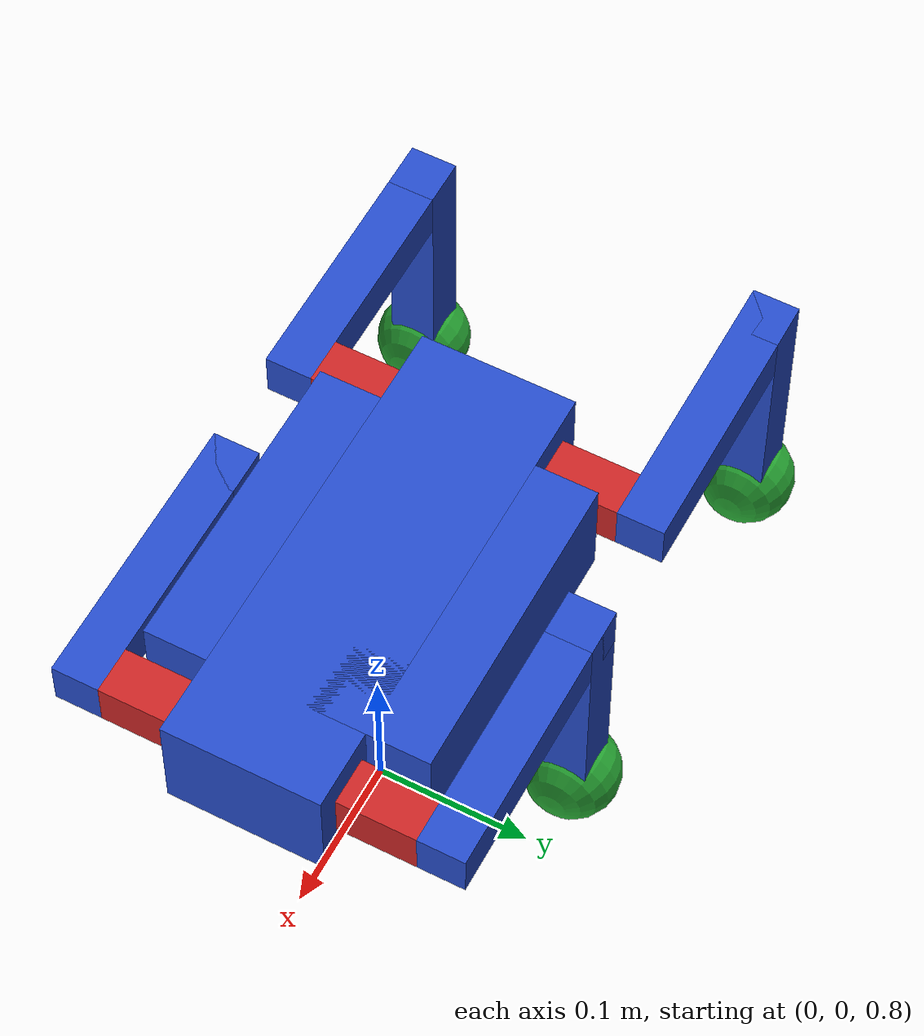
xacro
<?xml version='1.0'?>
<robot name="quadrus" xmlns:xacro="http://www.ros.org/wiki/xacro">

	<!-- Constants for robot dimensions, mass and inertia-->
	<xacro:property name="PI" value="3.1415926535897931"/>

	<xacro:property name="hip_offset" value="0.04" />
	<xacro:property name="upperleg_length" value="0.150" />
	<xacro:property name="lowerleg_length" value="0.150" />

	<xacro:property name="rear_hip_long_offset" value="-0.12" />
	<xacro:property name="hip_long_center_dist" value="0.24" />
	<xacro:property name="hip_lat_center_dist" value="0.15" />

	<!-- Import Rviz colors -->
	<xacro:include filename="$(find qd_simulation)/robot_description/materials.xacro" />
	<!-- Import all Gazebo-customization elements, including Gazebo colors -->
	<xacro:include filename="$(find qd_simulation)/robot_description/quadrus.gazebo" />

	<!-- Used for fixing robot to Gazebo 'base_link' -->
	<link name="world"/>

	<joint name="fixed" type="fixed">
		<parent link="world"/>
		<child link="base_link"/>
		<origin xyz="0 0 1"/>
	</joint>

	<link name="base_link">
		<visual>
			<origin xyz="0 0 0" rpy="0 0 0" />
			<geometry>
				<box size="0.30 0.10 0.07"/>
			</geometry>
			<material name="blue" />
		</visual>

		<visual>
			<origin xyz="0 0 0" rpy="0 0 0" />
			<geometry>
				<box size="0.2 0.18 0.07"/>
			</geometry>
			<material name="blue"/>
		</visual>

		<collision>
			<origin xyz="0 0 0" rpy="0 0 0" />
			<geometry>
				<box size="0.30 0.10 0.07"/>
			</geometry>
		</collision>

		<inertial>
			<mass value="2"/>
			<inertia ixx="0.13" ixy="0.0" ixz="0.0" iyy="0.21" iyz="0.0" izz="0.13"/>
		</inertial>

	</link>

	<xacro:macro name="quadrus_leg" params="long lat id">
		<!-- Hip -->
			<xacro:property name="hip_joint_id" value="J${(id-1)*3+1}"/>

			<link name="link_${long}_${lat}_hip">
				<visual>
					<origin xyz="0 0 0" rpy="0 0 0" />
					<geometry>
						<box size="0.03 0.05 0.03"/>
					</geometry>
					<material name="red"/>
				</visual>

				<collision>
					<origin xyz="0 0 0" rpy="0 0 0" />
					<geometry>
						<box size="0.03 0.05 0.03"/>
					</geometry>
				</collision>

				<inertial>
					<mass value="0.1"/>
					<inertia ixx="0.01" ixy="0.0" ixz="0.0" iyy="0.01" iyz="0.0" izz="0.01"/>
				</inertial>

			</link>

			<joint name="${hip_joint_id}" type="continuous">
				<parent link="base_link"/>
				<child link="link_${long}_${lat}_hip"/>

				<xacro:if value="${long == 'front' and lat == 'left'}">
					<origin xyz="${rear_hip_long_offset+hip_long_center_dist} ${hip_lat_center_dist/2.0} 0" rpy="0 0 0" />
				</xacro:if>

				<xacro:if value="${long == 'front' and lat == 'right'}">
					<origin xyz="${rear_hip_long_offset+hip_long_center_dist} ${-hip_lat_center_dist/2.0} 0" rpy="0 0 0" />
				</xacro:if>

				<xacro:if value="${long == 'back' and lat == 'left'}">
					<origin xyz="${rear_hip_long_offset} ${hip_lat_center_dist/2.0} 0" rpy="0 0 0" />
				</xacro:if>

				<xacro:if value="${long == 'back' and lat == 'right'}">
					<origin xyz="${rear_hip_long_offset} ${-hip_lat_center_dist/2.0} 0" rpy="0 0 0" />
				</xacro:if>

				<axis xyz="1 0 0" />
			</joint>

			<transmission name="transmission_${long}_${lat}_hip">
				<type>transmission_interface/SimpleTransmission</type>
				<joint name="${hip_joint_id}">
					<hardwareInterface>hardware_interface/EffortJointInterface</hardwareInterface>
				</joint>
				<actuator name="motor_${long}_${lat}_hip">
					<mechanicalReduction>1</mechanicalReduction>
					<hardwareInterface>hardware_interface/EffortJointInterface</hardwareInterface>
				</actuator>
			</transmission>

			<gazebo reference="link_${long}_${lat}_hip">
				<material>Gazebo/Red</material>
			</gazebo>

		<!-- Upperleg -->
			<xacro:property name="upperleg_joint_id" value="J${(id-1)*3+2}"/>

			<link name="link_${long}_${lat}_upperleg">
				<visual>
					<origin xyz="-0.075 0 0" rpy="0 0 0" />
					<geometry>
						<box size="${upperleg_length+0.03} 0.03 0.03"/>
					</geometry>
					<material name="blue"/>
				</visual>

				<collision>
					<origin xyz="-0.075 0 0" rpy="0 0 0" />
					<geometry>
						<box size="${upperleg_length+0.03}  0.03 0.03"/>
					</geometry>
				</collision>

				<inertial>
					<mass value="0.1"/>
					<inertia ixx="0.1" ixy="0.0" ixz="0.0" iyy="0.1" iyz="0.0" izz="0.1"/>
				</inertial>

			</link>

			<joint name="${upperleg_joint_id}" type="continuous">
				<parent link="link_${long}_${lat}_hip"/>
				<child link="link_${long}_${lat}_upperleg"/>

				<xacro:if value="${lat == 'left'}">
					<origin xyz="0 ${hip_offset} 0" rpy="0 0 0" />
				</xacro:if>

				<xacro:if value="${lat == 'right'}">
					<origin xyz="0 ${-hip_offset} 0" rpy="0 0 0" />
				</xacro:if>

				<axis xyz="0 1 0" />
			</joint>

			<transmission name="transmission_${long}_${lat}_upperleg">
				<type>transmission_interface/SimpleTransmission</type>
				<joint name="${upperleg_joint_id}">
					<hardwareInterface>hardware_interface/EffortJointInterface</hardwareInterface>
				</joint>
				<actuator name="motor_${long}_${lat}_upperleg">
					<mechanicalReduction>1</mechanicalReduction>
					<hardwareInterface>hardware_interface/EffortJointInterface</hardwareInterface>
				</actuator>
			</transmission>

			<gazebo reference="link_${long}_${lat}_upperleg">
				<material>Gazebo/White</material>
			</gazebo>

		<!-- LowerLeg -->
			<xacro:property name="lowerleg_joint_id" value="J${(id-1)*3+3}"/>

			<link name="link_${long}_${lat}_lowerleg">
				<visual>
					<origin xyz="0.075 0 0" rpy="0 0 0" />
					<geometry>
						<box size="${lowerleg_length+0.03} 0.03 0.03"/>
					</geometry>
					<material name="blue"/>
				</visual>

				<collision>
					<origin xyz="0.075 0 0" rpy="0 0 0" />
					<geometry>
						<box size="${lowerleg_length+0.03} 0.03 0.03"/>
					</geometry>
				</collision>

				<inertial>
					<mass value="0.1"/>
					<inertia ixx="0.1" ixy="0.0" ixz="0.0" iyy="0.1" iyz="0.0" izz="0.1"/>
				</inertial>

			</link>

			<joint name="${lowerleg_joint_id}" type="continuous">
				<parent link="link_${long}_${lat}_upperleg"/>
				<child link="link_${long}_${lat}_lowerleg"/>
				<origin xyz="-0.15 0 0" rpy="0 1.5708 0" />
				<axis xyz="0 1 0" />
			</joint>

			<transmission name="transmission_${long}_${lat}_lowerleg">
				<type>transmission_interface/SimpleTransmission</type>
				<joint name="${lowerleg_joint_id}">
					<hardwareInterface>hardware_interface/EffortJointInterface</hardwareInterface>
				</joint>
				<actuator name="motor_${long}_${lat}_lowerleg">
					<mechanicalReduction>1</mechanicalReduction>
					<hardwareInterface>hardware_interface/EffortJointInterface</hardwareInterface>
				</actuator>
			</transmission>

			<gazebo reference="link_${long}_${lat}_lowerleg">
				<material>Gazebo/White</material>
			</gazebo>

		<!-- Paw -->
			<link name="link_${long}_${lat}_paw">
				<visual>
					<origin xyz="0 0 0" rpy="0 0 0" />
					<geometry>
						<sphere radius = "0.03"/>
					</geometry>
					<material name="green"/>
				</visual>

				<collision>
					<origin xyz="0 0 0" rpy="0 0 0" />
					<geometry>
						<sphere radius = "0.03"/>
					</geometry>
				</collision>

				<inertial>
					<mass value="0.1"/>
					<inertia ixx="0.1" ixy="0.0" ixz="0.0" iyy="0.1" iyz="0.0" izz="0.1"/>
				</inertial>

			</link>

			<joint name="joint_${long}_${lat}_paw" type="fixed">
				<parent link="link_${long}_${lat}_lowerleg"/>
				<child link="link_${long}_${lat}_paw"/>
				<origin xyz="0.15 0 0" rpy="0 0 0" />
			</joint>

			<gazebo reference="link_${long}_${lat}_paw">
				<material>Gazebo/Green</material>
			</gazebo>

	</xacro:macro>

	<xacro:quadrus_leg long="front" lat="left" id="1"/>
	<xacro:quadrus_leg long="front" lat="right" id="2"/>
	<xacro:quadrus_leg long="back" lat="left" id="3"/>
	<xacro:quadrus_leg long="back" lat="right" id="4"/>

</robot>
